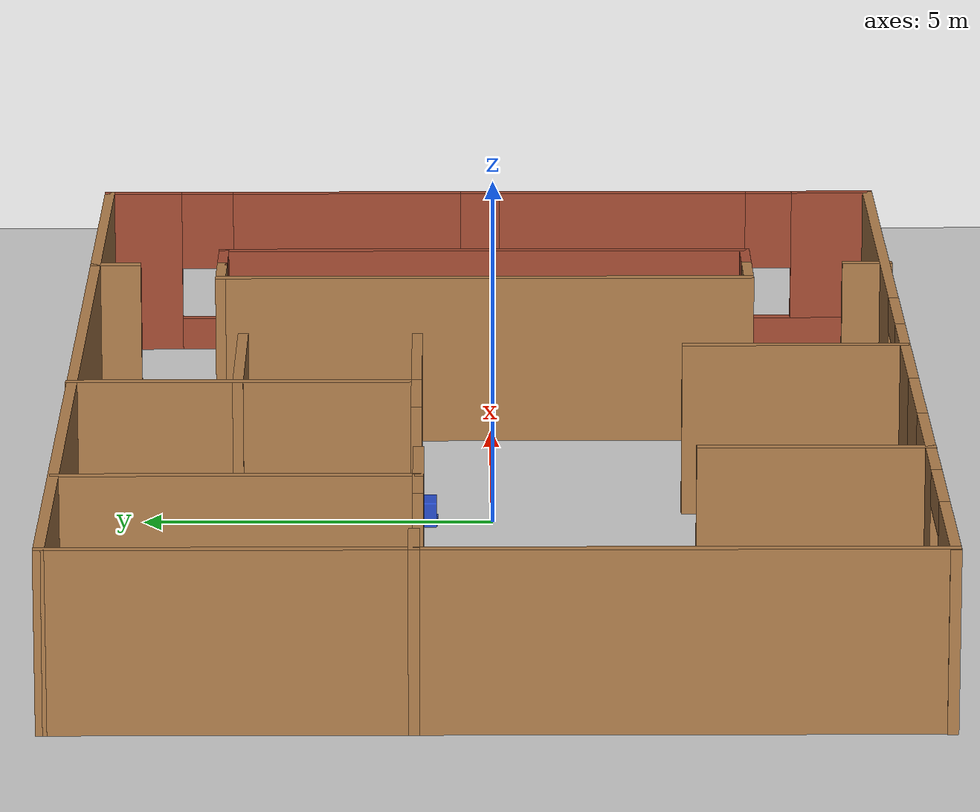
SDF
<sdf version="1.7">
 <world name="default">
  <light name="sun" type="directional">
   <pose>0 0 10 0 -0 0</pose>
   <diffuse>0.8 0.8 0.8 1</diffuse>
   <specular>0.2 0.2 0.2 1</specular>
   <attenuation>
    <range>1000</range>
    <constant>0.9</constant>
    <linear>0.01</linear>
    <quadratic>0.001</quadratic>
   </attenuation>
   <direction>-0.5 0.1 -0.9</direction>
   <spot><inner_angle>0</inner_angle><outer_angle>0</outer_angle><falloff>0</falloff></spot>
  </light>
  <model name="ground_plane">
   <static>1</static>
   <link name="link">
    <collision name="collision">
     <geometry><plane><normal>0 0 1</normal><size>100 100</size></plane></geometry>
     <surface><friction><ode><mu>100</mu><mu2>50</mu2></ode></friction></surface>
    </collision>
    <visual name="visual">
     <cast_shadows>0</cast_shadows>
     <geometry><plane><normal>0 0 1</normal><size>100 100</size></plane></geometry>
     <material>
      <script><uri>file://media/materials/scripts/gazebo.material</uri><name>Gazebo/Grey</name></script>
     </material>
    </visual>
   </link>
  </model>
  <gravity>0 0 -9.8</gravity>
  <magnetic_field>6e-06 2.3e-05 -4.2e-05</magnetic_field>
  <atmosphere type="adiabatic"/>
  <physics type="ode">
   <max_step_size>0.001</max_step_size>
   <real_time_factor>1</real_time_factor>
   <real_time_update_rate>1000</real_time_update_rate>
  </physics>
  <scene><ambient>0.4 0.4 0.4 1</ambient><background>0.7 0.7 0.7 1</background><shadows>1</shadows></scene>
  <audio><device>default</device></audio>
  <spherical_coordinates>
   <surface_model>EARTH_WGS84</surface_model>
   <latitude_deg>0</latitude_deg>
   <longitude_deg>0</longitude_deg>
   <elevation>0</elevation>
   <heading_deg>0</heading_deg>
  </spherical_coordinates>
  <model name="restaurant">
   <pose>0.00052 -2e-05 0 0 -0 0</pose>
   <link name="Wall_14">
    <pose>9.93178 -2.98994 0 0 -0 -1.56964</pose>
    <visual name="Wall_14_Visual_0">
     <pose>-0.989557 0 1.25 0 -0 0</pose>
     <geometry><box><size>3.98617 0.15 2.5</size></box></geometry>
     <material>
      <script><uri>file://media/materials/scripts/gazebo.material</uri><name>Gazebo/Bricks</name></script>
      <ambient>1 1 1 1</ambient>
     </material>
     <meta><layer>0</layer></meta>
    </visual>
    <collision name="Wall_14_Collision_0">
     <geometry><box><size>3.98617 0.15 2.5</size></box></geometry>
     <pose>-0.989557 0 1.25 0 -0 0</pose>
    </collision>
    <visual name="Wall_14_Visual_1">
     <pose>1.99308 0 0.25 0 -0 0</pose>
     <geometry><box><size>1.97911 0.15 0.5</size></box></geometry>
     <material>
      <script><uri>file://media/materials/scripts/gazebo.material</uri><name>Gazebo/Bricks</name></script>
      <ambient>1 1 1 1</ambient>
     </material>
     <meta><layer>0</layer></meta>
    </visual>
    <collision name="Wall_14_Collision_1">
     <geometry><box><size>1.97911 0.15 0.5</size></box></geometry>
     <pose>1.99308 0 0.25 0 -0 0</pose>
    </collision>
    <visual name="Wall_14_Visual_2">
     <pose>2.35186 0 1.5 0 -0 0</pose>
     <geometry><box><size>1.26156 0.15 2</size></box></geometry>
     <material>
      <script><uri>file://media/materials/scripts/gazebo.material</uri><name>Gazebo/Bricks</name></script>
      <ambient>1 1 1 1</ambient>
     </material>
     <meta><layer>0</layer></meta>
    </visual>
    <collision name="Wall_14_Collision_2">
     <geometry><box><size>1.26156 0.15 2</size></box></geometry>
     <pose>2.35186 0 1.5 0 -0 0</pose>
    </collision>
    <visual name="Wall_14_Visual_3">
     <pose>1.36231 0 1.9 0 -0 0</pose>
     <geometry><box><size>0.717555 0.15 1.2</size></box></geometry>
     <material>
      <script><uri>file://media/materials/scripts/gazebo.material</uri><name>Gazebo/Bricks</name></script>
      <ambient>1 1 1 1</ambient>
     </material>
     <meta><layer>0</layer></meta>
    </visual>
    <collision name="Wall_14_Collision_3">
     <geometry><box><size>0.717555 0.15 1.2</size></box></geometry>
     <pose>1.36231 0 1.9 0 -0 0</pose>
    </collision>
   </link>
   <link name="Wall_15">
    <pose>-0.010231 -5.89748 0 0 -0 3.14159</pose>
    <visual name="Wall_15_Visual_0">
     <pose>-6.59523 0 1.25 0 -0 0</pose>
     <geometry><box><size>6.80954 0.15 2.5</size></box></geometry>
     <material>
      <script><uri>file://media/materials/scripts/gazebo.material</uri><name>Gazebo/Wood</name></script>
      <ambient>1 1 1 1</ambient>
     </material>
     <meta><layer>0</layer></meta>
    </visual>
    <collision name="Wall_15_Collision_0">
     <geometry><box><size>6.80954 0.15 2.5</size></box></geometry>
     <pose>-6.59523 0 1.25 0 -0 0</pose>
    </collision>
    <visual name="Wall_15_Visual_1">
     <pose>-0.152511 0 1.25 0 -0 0</pose>
     <geometry><box><size>3.07169 0.15 2.5</size></box></geometry>
     <material>
      <script><uri>file://media/materials/scripts/gazebo.material</uri><name>Gazebo/Wood</name></script>
      <ambient>1 1 1 1</ambient>
     </material>
     <meta><layer>0</layer></meta>
    </visual>
    <collision name="Wall_15_Collision_1">
     <geometry><box><size>3.07169 0.15 2.5</size></box></geometry>
     <pose>-0.152511 0 1.25 0 -0 0</pose>
    </collision>
    <visual name="Wall_15_Visual_2">
     <pose>8.87248 0 1.25 0 -0 0</pose>
     <geometry><box><size>2.25504 0.15 2.5</size></box></geometry>
     <material>
      <script><uri>file://media/materials/scripts/gazebo.material</uri><name>Gazebo/Wood</name></script>
      <ambient>1 1 1 1</ambient>
     </material>
     <meta><layer>0</layer></meta>
    </visual>
    <collision name="Wall_15_Collision_2">
     <geometry><box><size>2.25504 0.15 2.5</size></box></geometry>
     <pose>8.87248 0 1.25 0 -0 0</pose>
    </collision>
    <visual name="Wall_15_Visual_3">
     <pose>3.7864 0 0.25 0 -0 0</pose>
     <geometry><box><size>4.80612 0.15 0.5</size></box></geometry>
     <material>
      <script><uri>file://media/materials/scripts/gazebo.material</uri><name>Gazebo/Wood</name></script>
      <ambient>1 1 1 1</ambient>
     </material>
     <meta><layer>0</layer></meta>
    </visual>
    <collision name="Wall_15_Collision_3">
     <geometry><box><size>4.80612 0.15 0.5</size></box></geometry>
     <pose>3.7864 0 0.25 0 -0 0</pose>
    </collision>
    <visual name="Wall_15_Visual_4">
     <pose>4.72994 0 1.5 0 -0 0</pose>
     <geometry><box><size>2.91902 0.15 2</size></box></geometry>
     <material>
      <script><uri>file://media/materials/scripts/gazebo.material</uri><name>Gazebo/Wood</name></script>
      <ambient>1 1 1 1</ambient>
     </material>
     <meta><layer>0</layer></meta>
    </visual>
    <collision name="Wall_15_Collision_4">
     <geometry><box><size>2.91902 0.15 2</size></box></geometry>
     <pose>4.72994 0 1.5 0 -0 0</pose>
    </collision>
    <visual name="Wall_15_Visual_5">
     <pose>2.32688 0 1.9 0 -0 0</pose>
     <geometry><box><size>1.88709 0.15 1.2</size></box></geometry>
     <material>
      <script><uri>file://media/materials/scripts/gazebo.material</uri><name>Gazebo/Wood</name></script>
      <ambient>1 1 1 1</ambient>
     </material>
     <meta><layer>0</layer></meta>
    </visual>
    <collision name="Wall_15_Collision_5">
     <geometry><box><size>1.88709 0.15 1.2</size></box></geometry>
     <pose>2.32688 0 1.9 0 -0 0</pose>
    </collision>
    <visual name="Wall_15_Visual_6">
     <pose>-2.43941 0 2.25 0 -0 0</pose>
     <geometry><box><size>1.5021 0.15 0.5</size></box></geometry>
     <material>
      <script><uri>file://media/materials/scripts/gazebo.material</uri><name>Gazebo/Wood</name></script>
      <ambient>1 1 1 1</ambient>
     </material>
     <meta><layer>0</layer></meta>
    </visual>
    <collision name="Wall_15_Collision_6">
     <geometry><box><size>1.5021 0.15 0.5</size></box></geometry>
     <pose>-2.43941 0 2.25 0 -0 0</pose>
    </collision>
    <visual name="Wall_15_Visual_7">
     <pose>6.9672 0 2.25 0 -0 0</pose>
     <geometry><box><size>1.5555 0.15 0.5</size></box></geometry>
     <material>
      <script><uri>file://media/materials/scripts/gazebo.material</uri><name>Gazebo/Wood</name></script>
      <ambient>1 1 1 1</ambient>
     </material>
     <meta><layer>0</layer></meta>
    </visual>
    <collision name="Wall_15_Collision_7">
     <geometry><box><size>1.5555 0.15 0.5</size></box></geometry>
     <pose>6.9672 0 2.25 0 -0 0</pose>
    </collision>
   </link>
   <link name="Wall_16">
    <collision name="Wall_16_Collision">
     <geometry><box><size>11.9652 0.15 2.5</size></box></geometry>
     <pose>0 0 1.25 0 -0 0</pose>
    </collision>
    <visual name="Wall_16_Visual">
     <pose>0 0 1.25 0 -0 0</pose>
     <geometry><box><size>11.9652 0.15 2.5</size></box></geometry>
     <material>
      <script><uri>file://media/materials/scripts/gazebo.material</uri><name>Gazebo/Wood</name></script>
      <ambient>1 1 1 1</ambient>
     </material>
     <meta><layer>0</layer></meta>
    </visual>
    <pose>-9.91822 0.010065 0 0 -0 1.57137</pose>
   </link>
   <link name="Wall_17">
    <collision name="Wall_17_Collision">
     <geometry><box><size>20 0.15 2.5</size></box></geometry>
     <pose>0 0 1.25 0 -0 0</pose>
    </collision>
    <visual name="Wall_17_Visual">
     <pose>0 0 1.25 0 -0 0</pose>
     <geometry><box><size>20 0.15 2.5</size></box></geometry>
     <material>
      <script><uri>file://media/materials/scripts/gazebo.material</uri><name>Gazebo/Wood</name></script>
      <ambient>1 1 1 1</ambient>
     </material>
     <meta><layer>0</layer></meta>
    </visual>
    <pose>0.003408 5.91761 0 0 -0 0</pose>
   </link>
   <link name="Wall_18">
    <pose>9.92841 2.91761 0 0 -0 -1.5708</pose>
    <visual name="Wall_18_Visual_0">
     <pose>-2.47664 0 1.25 0 -0 0</pose>
     <geometry><box><size>1.19672 0.15 2.5</size></box></geometry>
     <material>
      <script><uri>file://media/materials/scripts/gazebo.material</uri><name>Gazebo/Bricks</name></script>
      <ambient>1 1 1 1</ambient>
     </material>
     <meta><layer>0</layer></meta>
    </visual>
    <collision name="Wall_18_Collision_0">
     <geometry><box><size>1.19672 0.15 2.5</size></box></geometry>
     <pose>-2.47664 0 1.25 0 -0 0</pose>
    </collision>
    <visual name="Wall_18_Visual_1">
     <pose>0.59836 0 0.25 0 -0 0</pose>
     <geometry><box><size>4.95328 0.15 0.5</size></box></geometry>
     <material>
      <script><uri>file://media/materials/scripts/gazebo.material</uri><name>Gazebo/Bricks</name></script>
      <ambient>1 1 1 1</ambient>
     </material>
     <meta><layer>0</layer></meta>
    </visual>
    <collision name="Wall_18_Collision_1">
     <geometry><box><size>4.95328 0.15 0.5</size></box></geometry>
     <pose>0.59836 0 0.25 0 -0 0</pose>
    </collision>
    <visual name="Wall_18_Visual_2">
     <pose>0.693485 0 1.5 0 -0 0</pose>
     <geometry><box><size>3.54353 0.15 2</size></box></geometry>
     <material>
      <script><uri>file://media/materials/scripts/gazebo.material</uri><name>Gazebo/Bricks</name></script>
      <ambient>1 1 1 1</ambient>
     </material>
     <meta><layer>0</layer></meta>
    </visual>
    <collision name="Wall_18_Collision_2">
     <geometry><box><size>3.54353 0.15 2</size></box></geometry>
     <pose>0.693485 0 1.5 0 -0 0</pose>
    </collision>
    <visual name="Wall_18_Visual_3">
     <pose>0.693485 0 1.5 0 -0 0</pose>
     <geometry><box><size>3.54353 0.15 2</size></box></geometry>
     <material>
      <script><uri>file://media/materials/scripts/gazebo.material</uri><name>Gazebo/Bricks</name></script>
      <ambient>1 1 1 1</ambient>
     </material>
     <meta><layer>0</layer></meta>
    </visual>
    <collision name="Wall_18_Collision_3">
     <geometry><box><size>3.54353 0.15 2</size></box></geometry>
     <pose>0.693485 0 1.5 0 -0 0</pose>
    </collision>
    <visual name="Wall_18_Visual_4">
     <pose>-1.47828 0 1.9 0 -0 0</pose>
     <geometry><box><size>0.8 0.15 1.2</size></box></geometry>
     <material>
      <script><uri>file://media/materials/scripts/gazebo.material</uri><name>Gazebo/Bricks</name></script>
      <ambient>1 1 1 1</ambient>
     </material>
     <meta><layer>0</layer></meta>
    </visual>
    <collision name="Wall_18_Collision_4">
     <geometry><box><size>0.8 0.15 1.2</size></box></geometry>
     <pose>-1.47828 0 1.9 0 -0 0</pose>
    </collision>
    <visual name="Wall_18_Visual_5">
     <pose>2.77013 0 1.9 0 -0 0</pose>
     <geometry><box><size>0.60975 0.15 1.2</size></box></geometry>
     <material>
      <script><uri>file://media/materials/scripts/gazebo.material</uri><name>Gazebo/Bricks</name></script>
      <ambient>1 1 1 1</ambient>
     </material>
     <meta><layer>0</layer></meta>
    </visual>
    <collision name="Wall_18_Collision_5">
     <geometry><box><size>0.60975 0.15 1.2</size></box></geometry>
     <pose>2.77013 0 1.9 0 -0 0</pose>
    </collision>
    <visual name="Wall_18_Visual_6">
     <pose>2.77013 0 1.9 0 -0 0</pose>
     <geometry><box><size>0.60975 0.15 1.2</size></box></geometry>
     <material>
      <script><uri>file://media/materials/scripts/gazebo.material</uri><name>Gazebo/Bricks</name></script>
      <ambient>1 1 1 1</ambient>
     </material>
     <meta><layer>0</layer></meta>
    </visual>
    <collision name="Wall_18_Collision_6">
     <geometry><box><size>0.60975 0.15 1.2</size></box></geometry>
     <pose>2.77013 0 1.9 0 -0 0</pose>
    </collision>
   </link>
   <link name="Wall_22">
    <collision name="Wall_22_Collision">
     <geometry><box><size>0.75 0.15 2.5</size></box></geometry>
     <pose>0 0 1.25 0 -0 0</pose>
    </collision>
    <visual name="Wall_22_Visual">
     <pose>0 0 1.25 0 -0 0</pose>
     <geometry><box><size>0.75 0.15 2.5</size></box></geometry>
     <material>
      <script><uri>file://media/materials/scripts/gazebo.material</uri><name>Gazebo/Wood</name></script>
      <ambient>1 1 1 1</ambient>
     </material>
     <meta><layer>0</layer></meta>
    </visual>
    <pose>5.35251 -5.63541 0 0 -0 1.5708</pose>
   </link>
   <link name="Wall_24">
    <collision name="Wall_24_Collision">
     <geometry><box><size>0.75 0.15 2.5</size></box></geometry>
     <pose>0 0 1.25 0 -0 0</pose>
    </collision>
    <visual name="Wall_24_Visual">
     <pose>0 0 1.25 0 -0 0</pose>
     <geometry><box><size>0.75 0.15 2.5</size></box></geometry>
     <material>
      <script><uri>file://media/materials/scripts/gazebo.material</uri><name>Gazebo/Wood</name></script>
      <ambient>1 1 1 1</ambient>
     </material>
     <meta><layer>0</layer></meta>
    </visual>
    <pose>5.31682 5.61552 0 0 -0 -1.5708</pose>
   </link>
   <link name="Wall_26">
    <collision name="Wall_26_Collision">
     <geometry><box><size>5 0.15 2.5</size></box></geometry>
     <pose>0 0 1.25 0 -0 0</pose>
    </collision>
    <visual name="Wall_26_Visual">
     <pose>0 0 1.25 0 -0 0</pose>
     <geometry><box><size>5 0.15 2.5</size></box></geometry>
     <material>
      <script><uri>file://media/materials/scripts/gazebo.material</uri><name>Gazebo/Wood</name></script>
      <ambient>1 1 1 1</ambient>
     </material>
     <meta><layer>0</layer></meta>
    </visual>
    <pose>-6.3931 3.4684 0 0 -0 -1.5708</pose>
   </link>
   <link name="Wall_30">
    <collision name="Wall_30_Collision">
     <geometry><box><size>1 0.15 2.5</size></box></geometry>
     <pose>0 0 1.25 0 -0 0</pose>
    </collision>
    <visual name="Wall_30_Visual">
     <pose>0 0 1.25 0 -0 0</pose>
     <geometry><box><size>1 0.15 2.5</size></box></geometry>
     <material>
      <script><uri>file://media/materials/scripts/gazebo.material</uri><name>Gazebo/Wood</name></script>
      <ambient>1 1 1 1</ambient>
     </material>
     <meta><layer>0</layer></meta>
    </visual>
    <pose>-6.8181 1.0434 0 0 -0 3.14159</pose>
   </link>
   <link name="Wall_34">
    <collision name="Wall_34_Collision">
     <geometry><box><size>1 0.15 2.5</size></box></geometry>
     <pose>0 0 1.25 0 -0 0</pose>
    </collision>
    <visual name="Wall_34_Visual">
     <pose>0 0 1.25 0 -0 0</pose>
     <geometry><box><size>1 0.15 2.5</size></box></geometry>
     <material>
      <script><uri>file://media/materials/scripts/gazebo.material</uri><name>Gazebo/Wood</name></script>
      <ambient>1 1 1 1</ambient>
     </material>
     <meta><layer>0</layer></meta>
    </visual>
    <pose>-9.49428 1.08722 0 0 -0 0</pose>
   </link>
   <link name="Wall_39">
    <collision name="Wall_39_Collision">
     <geometry><box><size>5 0.15 2.5</size></box></geometry>
     <pose>0 0 1.25 0 -0 0</pose>
    </collision>
    <visual name="Wall_39_Visual">
     <pose>0 0 1.25 0 -0 0</pose>
     <geometry><box><size>5 0.15 2.5</size></box></geometry>
     <material>
      <script><uri>file://media/materials/scripts/gazebo.material</uri><name>Gazebo/Wood</name></script>
      <ambient>1 1 1 1</ambient>
     </material>
     <meta><layer>0</layer></meta>
    </visual>
    <pose>-1.50748 3.51041 0 0 -0 -1.5708</pose>
   </link>
   <link name="Wall_40">
    <collision name="Wall_40_Collision">
     <geometry><box><size>1.5 0.15 2.5</size></box></geometry>
     <pose>0 0 1.25 0 -0 0</pose>
    </collision>
    <visual name="Wall_40_Visual">
     <pose>0 0 1.25 0 -0 0</pose>
     <geometry><box><size>1.5 0.15 2.5</size></box></geometry>
     <material>
      <script><uri>file://media/materials/scripts/gazebo.material</uri><name>Gazebo/Wood</name></script>
      <ambient>1 1 1 1</ambient>
     </material>
     <meta><layer>0</layer></meta>
    </visual>
    <pose>-2.18248 1.0854 0 0 -0 3.14159</pose>
   </link>
   <link name="Wall_42">
    <collision name="Wall_42_Collision">
     <geometry><box><size>1.5 0.15 2.5</size></box></geometry>
     <pose>0 0 1.25 0 -0 0</pose>
    </collision>
    <visual name="Wall_42_Visual">
     <pose>0 0 1.25 0 -0 0</pose>
     <geometry><box><size>1.5 0.15 2.5</size></box></geometry>
     <material>
      <script><uri>file://media/materials/scripts/gazebo.material</uri><name>Gazebo/Wood</name></script>
      <ambient>1 1 1 1</ambient>
     </material>
     <meta><layer>0</layer></meta>
    </visual>
    <pose>-5.7181 1.0434 0 0 -0 0</pose>
   </link>
   <link name="Wall_46">
    <collision name="Wall_46_Collision">
     <geometry><box><size>3.25 0.15 2.5</size></box></geometry>
     <pose>0 0 1.25 0 -0 0</pose>
    </collision>
    <visual name="Wall_46_Visual">
     <pose>0 0 1.25 0 -0 0</pose>
     <geometry><box><size>3.25 0.15 2.5</size></box></geometry>
     <material>
      <script><uri>file://media/materials/scripts/gazebo.material</uri><name>Gazebo/Wood</name></script>
      <ambient>1 1 1 1</ambient>
     </material>
     <meta><layer>0</layer></meta>
    </visual>
    <pose>-5.0066 -4.35047 0 0 -0 1.5708</pose>
   </link>
   <link name="Wall_48">
    <collision name="Wall_48_Collision">
     <geometry><box><size>3.25 0.15 2.5</size></box></geometry>
     <pose>0 0 1.25 0 -0 0</pose>
    </collision>
    <visual name="Wall_48_Visual">
     <pose>0 0 1.25 0 -0 0</pose>
     <geometry><box><size>3.25 0.15 2.5</size></box></geometry>
     <material>
      <script><uri>file://media/materials/scripts/gazebo.material</uri><name>Gazebo/Wood</name></script>
      <ambient>1 1 1 1</ambient>
     </material>
     <meta><layer>0</layer></meta>
    </visual>
    <pose>0.491486 -4.33151 0 0 -0 1.5708</pose>
   </link>
   <link name="Wall_55">
    <collision name="Wall_55_Collision">
     <geometry><box><size>1 0.15 2.5</size></box></geometry>
     <pose>0 0 1.25 0 -0 0</pose>
    </collision>
    <visual name="Wall_55_Visual">
     <pose>0 0 1.25 0 -0 0</pose>
     <geometry><box><size>1 0.15 2.5</size></box></geometry>
     <material>
      <script><uri>file://media/materials/scripts/gazebo.material</uri><name>Gazebo/Wood</name></script>
      <ambient>1 1 1 1</ambient>
     </material>
     <meta><layer>0</layer></meta>
    </visual>
    <pose>4.9079 4.0236 0 0 -0 3.14159</pose>
   </link>
   <link name="Wall_56">
    <collision name="Wall_56_Collision">
     <geometry><box><size>8 0.15 2.5</size></box></geometry>
     <pose>0 0 1.25 0 -0 0</pose>
    </collision>
    <visual name="Wall_56_Visual">
     <pose>0 0 1.25 0 -0 0</pose>
     <geometry><box><size>8 0.15 2.5</size></box></geometry>
     <material>
      <script><uri>file://media/materials/scripts/gazebo.material</uri><name>Gazebo/Wood</name></script>
      <ambient>1 1 1 1</ambient>
     </material>
     <meta><layer>0</layer></meta>
    </visual>
    <pose>4.4829 0.098601 0 0 -0 -1.5708</pose>
   </link>
   <link name="Wall_59">
    <collision name="Wall_59_Collision">
     <geometry><box><size>1 0.15 2.5</size></box></geometry>
     <pose>0 0 1.25 0 -0 0</pose>
    </collision>
    <visual name="Wall_59_Visual">
     <pose>0 0 1.25 0 -0 0</pose>
     <geometry><box><size>1 0.15 2.5</size></box></geometry>
     <material>
      <script><uri>file://media/materials/scripts/gazebo.material</uri><name>Gazebo/Wood</name></script>
      <ambient>1 1 1 1</ambient>
     </material>
     <meta><layer>0</layer></meta>
    </visual>
    <pose>4.9079 -3.8264 0 0 -0 0</pose>
   </link>
   <link name="Wall_61">
    <collision name="Wall_61_Collision">
     <geometry><box><size>1 0.15 2.5</size></box></geometry>
     <pose>0 0 1.25 0 -0 0</pose>
    </collision>
    <visual name="Wall_61_Visual">
     <pose>0 0 1.25 0 -0 0</pose>
     <geometry><box><size>1 0.15 2.5</size></box></geometry>
     <material>
      <script><uri>file://media/materials/scripts/gazebo.material</uri><name>Gazebo/Bricks</name></script>
      <ambient>1 1 1 1</ambient>
     </material>
     <meta><layer>0</layer></meta>
    </visual>
    <pose>5.7579 4.0236 0 0 -0 0</pose>
   </link>
   <link name="Wall_62">
    <collision name="Wall_62_Collision">
     <geometry><box><size>8 0.15 2.5</size></box></geometry>
     <pose>0 0 1.25 0 -0 0</pose>
    </collision>
    <visual name="Wall_62_Visual">
     <pose>0 0 1.25 0 -0 0</pose>
     <geometry><box><size>8 0.15 2.5</size></box></geometry>
     <material>
      <script><uri>file://media/materials/scripts/gazebo.material</uri><name>Gazebo/Bricks</name></script>
      <ambient>1 1 1 1</ambient>
     </material>
     <meta><layer>0</layer></meta>
    </visual>
    <pose>6.1829 0.098601 0 0 -0 -1.5708</pose>
   </link>
   <link name="Wall_63">
    <collision name="Wall_63_Collision">
     <geometry><box><size>1 0.15 2.5</size></box></geometry>
     <pose>0 0 1.25 0 -0 0</pose>
    </collision>
    <visual name="Wall_63_Visual">
     <pose>0 0 1.25 0 -0 0</pose>
     <geometry><box><size>1 0.15 2.5</size></box></geometry>
     <material>
      <script><uri>file://media/materials/scripts/gazebo.material</uri><name>Gazebo/Bricks</name></script>
      <ambient>1 1 1 1</ambient>
     </material>
     <meta><layer>0</layer></meta>
    </visual>
    <pose>5.7579 -3.8264 0 0 -0 3.14159</pose>
   </link>
   <link name="Wall_65">
    <collision name="Wall_65_Collision">
     <geometry><box><size>2.75 0.15 2.5</size></box></geometry>
     <pose>0 0 1.25 0 -0 0</pose>
    </collision>
    <visual name="Wall_65_Visual">
     <pose>0 0 1.25 0 -0 0</pose>
     <geometry><box><size>2.75 0.15 2.5</size></box></geometry>
     <material>
      <script><uri>file://media/materials/scripts/gazebo.material</uri><name>Gazebo/Wood</name></script>
      <ambient>1 1 1 1</ambient>
     </material>
     <meta><layer>0</layer></meta>
    </visual>
    <pose>-0.20748 1.0854 0 0 -0 0</pose>
   </link>
   <link name="Wall_67">
    <collision name="Wall_67_Collision">
     <geometry><box><size>2.75 0.15 2.5</size></box></geometry>
     <pose>0 0 1.25 0 -0 0</pose>
    </collision>
    <visual name="Wall_67_Visual">
     <pose>0 0 1.25 0 -0 0</pose>
     <geometry><box><size>2.75 0.15 2.5</size></box></geometry>
     <material>
      <script><uri>file://media/materials/scripts/gazebo.material</uri><name>Gazebo/Wood</name></script>
      <ambient>1 1 1 1</ambient>
     </material>
     <meta><layer>0</layer></meta>
    </visual>
    <pose>-0.229172 3.59219 0 0 -0 0</pose>
   </link>
   <static>1</static>
  </model>
  <model name="charging_dock_0">
   <link name="link_0">
    <inertial>
     <mass>1</mass>
     <inertia>
      <ixx>0.166667</ixx>
      <ixy>0</ixy>
      <ixz>0</ixz>
      <iyy>0.166667</iyy>
      <iyz>0</iyz>
      <izz>0.166667</izz>
     </inertia>
    </inertial>
    <visual name="visual">
     <geometry>
      <mesh><uri>model://charging_dock/charging_dock.stl</uri><scale>0.001 0.001 0.001</scale></mesh>
     </geometry>
     <material>
      <lighting>1</lighting>
      <script><uri>file://media/materials/scripts/gazebo.material</uri><name>Gazebo/Blue</name></script>
      <shader type="pixel"><normal_map>__default__</normal_map></shader>
      <ambient>0.3 0.3 0.3 1</ambient>
      <diffuse>0.7 0.7 0.7 1</diffuse>
      <specular>0.01 0.01 0.01 1</specular>
      <emissive>0 0 0 1</emissive>
     </material>
    </visual>
    <collision name="collision">
     <geometry>
      <mesh><uri>model://charging_dock/charging_dock.stl</uri><scale>0.001 0.001 0.001</scale></mesh>
     </geometry>
     <surface>
      <friction>
       <ode><mu>1</mu><mu2>1</mu2><fdir1>0 0 0</fdir1><slip1>0</slip1><slip2>0</slip2></ode>
       <torsional>
        <coefficient>1</coefficient>
        <patch_radius>0</patch_radius>
        <surface_radius>0</surface_radius>
        <use_patch_radius>1</use_patch_radius>
        <ode><slip>0</slip></ode>
       </torsional>
      </friction>
      <bounce><restitution_coefficient>0</restitution_coefficient><threshold>1e+06</threshold></bounce>
      <contact>
       <collide_without_contact>0</collide_without_contact>
       <collide_without_contact_bitmask>1</collide_without_contact_bitmask>
       <collide_bitmask>1</collide_bitmask>
       <ode>
        <soft_cfm>0</soft_cfm>
        <soft_erp>0.2</soft_erp>
        <kp>1e+13</kp>
        <kd>1</kd>
        <max_vel>0.01</max_vel>
        <min_depth>0</min_depth>
       </ode>
       <bullet>
        <split_impulse>1</split_impulse>
        <split_impulse_penetration_threshold>-0.01</split_impulse_penetration_threshold>
        <soft_cfm>0</soft_cfm>
        <soft_erp>0.2</soft_erp>
        <kp>1e+13</kp>
        <kd>1</kd>
       </bullet>
      </contact>
     </surface>
    </collision>
   </link>
   <static>0</static>
   <pose>-0.002422 0.904932 -2e-06 1.4e-05 1.1e-05 -1.57031</pose>
  </model>
 </world>
</sdf>
